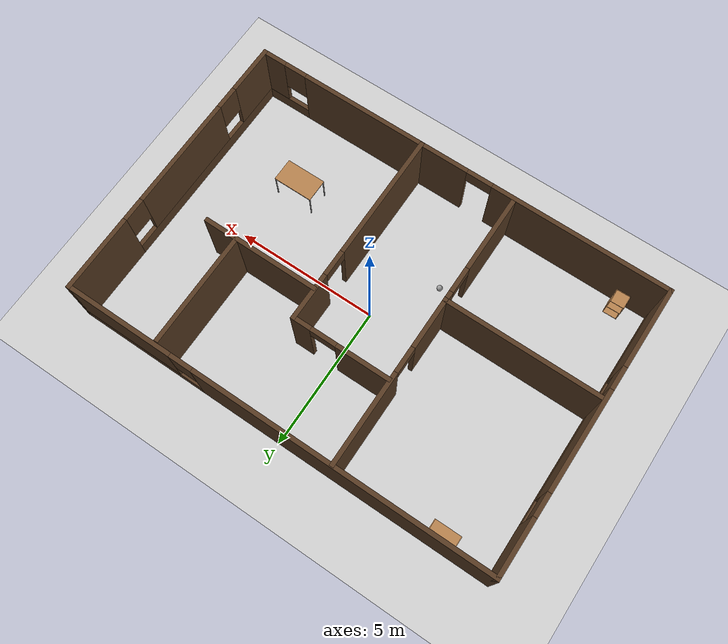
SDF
<sdf version="1.6">
 <world name="default">
  <plugin name="hello" filename="libhello.so"/>
  <light name="sun" type="directional">
   <pose>0 0 10 0 -0 0</pose>
   <diffuse>0.8 0.8 0.8 1</diffuse>
   <specular>0.1 0.1 0.1 1</specular>
   <attenuation>
    <range>1000</range>
    <constant>0.9</constant>
    <linear>0.01</linear>
    <quadratic>0.001</quadratic>
   </attenuation>
   <direction>-0.5 0.5 -1</direction>
  </light>
  <model name="ground_plane">
   <static>1</static>
   <link name="link">
    <collision name="collision">
     <geometry><plane><normal>0 0 1</normal><size>100 100</size></plane></geometry>
     <surface><friction><ode><mu>100</mu><mu2>50</mu2></ode></friction></surface>
    </collision>
    <visual name="visual">
     <cast_shadows>0</cast_shadows>
     <geometry><plane><normal>0 0 1</normal><size>100 100</size></plane></geometry>
     <material>
      <script><uri>file://media/materials/scripts/gazebo.material</uri><name>Gazebo/Grey</name></script>
     </material>
    </visual>
   </link>
  </model>
  <gravity>0 0 -9.8</gravity>
  <magnetic_field>6e-06 2.3e-05 -4.2e-05</magnetic_field>
  <atmosphere type="adiabatic"/>
  <physics name="default_physics" default="0" type="ode">
   <max_step_size>0.001</max_step_size>
   <real_time_factor>1</real_time_factor>
   <real_time_update_rate>1000</real_time_update_rate>
  </physics>
  <scene><ambient>0.4 0.4 0.4 1</ambient><background>0.7 0.7 0.7 1</background><shadows>1</shadows></scene>
  <spherical_coordinates>
   <surface_model>EARTH_WGS84</surface_model>
   <latitude_deg>0</latitude_deg>
   <longitude_deg>0</longitude_deg>
   <elevation>0</elevation>
   <heading_deg>0</heading_deg>
  </spherical_coordinates>
  <model name="Building">
   <link name="Wall_0">
    <pose>-0.015295 4.925 0 0 -0 0</pose>
    <visual name="Wall_0_Visual_0">
     <pose>-2.31291 0 1.25 0 -0 0</pose>
     <geometry><box><size>10.3742 0.15 2.5</size></box></geometry>
     <material>
      <script><uri>file://media/materials/scripts/gazebo.material</uri><name>Gazebo/Grey</name></script>
      <ambient>0.333333 0.223529 0.129412 1</ambient>
     </material>
    </visual>
    <collision name="Wall_0_Collision_0">
     <geometry><box><size>10.3742 0.15 2.5</size></box></geometry>
     <pose>-2.31291 0 1.25 0 -0 0</pose>
    </collision>
    <visual name="Wall_0_Visual_1">
     <pose>5.18709 0 0.25 0 -0 0</pose>
     <geometry><box><size>4.62583 0.15 0.5</size></box></geometry>
     <material>
      <script><uri>file://media/materials/scripts/gazebo.material</uri><name>Gazebo/Grey</name></script>
      <ambient>0.333333 0.223529 0.129412 1</ambient>
     </material>
    </visual>
    <collision name="Wall_0_Collision_1">
     <geometry><box><size>4.62583 0.15 0.5</size></box></geometry>
     <pose>5.18709 0 0.25 0 -0 0</pose>
    </collision>
    <visual name="Wall_0_Visual_2">
     <pose>5.58709 0 1.5 0 -0 0</pose>
     <geometry><box><size>3.82583 0.15 2</size></box></geometry>
     <material>
      <script><uri>file://media/materials/scripts/gazebo.material</uri><name>Gazebo/Grey</name></script>
      <ambient>0.333333 0.223529 0.129412 1</ambient>
     </material>
    </visual>
    <collision name="Wall_0_Collision_2">
     <geometry><box><size>3.82583 0.15 2</size></box></geometry>
     <pose>5.58709 0 1.5 0 -0 0</pose>
    </collision>
    <visual name="Wall_0_Visual_3">
     <pose>3.27417 0 1.9 0 -0 0</pose>
     <geometry><box><size>0.8 0.15 1.2</size></box></geometry>
     <material>
      <script><uri>file://media/materials/scripts/gazebo.material</uri><name>Gazebo/Grey</name></script>
      <ambient>0.333333 0.223529 0.129412 1</ambient>
     </material>
    </visual>
    <collision name="Wall_0_Collision_3">
     <geometry><box><size>0.8 0.15 1.2</size></box></geometry>
     <pose>3.27417 0 1.9 0 -0 0</pose>
    </collision>
   </link>
   <link name="Wall_1">
    <pose>7.44029 0 0 0 0 -1.5708</pose>
    <visual name="Wall_1_Visual_0">
     <pose>-3.6495 0 1.25 0 -0 0</pose>
     <geometry><box><size>2.701 0.15 2.5</size></box></geometry>
     <material>
      <script><uri>file://media/materials/scripts/gazebo.material</uri><name>Gazebo/Grey</name></script>
      <ambient>0.333333 0.223529 0.129412 1</ambient>
     </material>
    </visual>
    <collision name="Wall_1_Collision_0">
     <geometry><box><size>2.701 0.15 2.5</size></box></geometry>
     <pose>-3.6495 0 1.25 0 -0 0</pose>
    </collision>
    <visual name="Wall_1_Visual_1">
     <pose>1.3505 0 0.25 0 -0 0</pose>
     <geometry><box><size>7.299 0.15 0.5</size></box></geometry>
     <material>
      <script><uri>file://media/materials/scripts/gazebo.material</uri><name>Gazebo/Grey</name></script>
      <ambient>0.333333 0.223529 0.129412 1</ambient>
     </material>
    </visual>
    <collision name="Wall_1_Collision_1">
     <geometry><box><size>7.299 0.15 0.5</size></box></geometry>
     <pose>1.3505 0 0.25 0 -0 0</pose>
    </collision>
    <visual name="Wall_1_Visual_2">
     <pose>0.470903 0 1.5 0 -0 0</pose>
     <geometry><box><size>3.93981 0.15 2</size></box></geometry>
     <material>
      <script><uri>file://media/materials/scripts/gazebo.material</uri><name>Gazebo/Grey</name></script>
      <ambient>0.333333 0.223529 0.129412 1</ambient>
     </material>
    </visual>
    <collision name="Wall_1_Collision_2">
     <geometry><box><size>3.93981 0.15 2</size></box></geometry>
     <pose>0.470903 0 1.5 0 -0 0</pose>
    </collision>
    <visual name="Wall_1_Visual_3">
     <pose>4.1204 0 1.5 0 -0 0</pose>
     <geometry><box><size>1.75919 0.15 2</size></box></geometry>
     <material>
      <script><uri>file://media/materials/scripts/gazebo.material</uri><name>Gazebo/Grey</name></script>
      <ambient>0.333333 0.223529 0.129412 1</ambient>
     </material>
    </visual>
    <collision name="Wall_1_Collision_3">
     <geometry><box><size>1.75919 0.15 2</size></box></geometry>
     <pose>4.1204 0 1.5 0 -0 0</pose>
    </collision>
    <visual name="Wall_1_Visual_4">
     <pose>-1.899 0 1.9 0 -0 0</pose>
     <geometry><box><size>0.8 0.15 1.2</size></box></geometry>
     <material>
      <script><uri>file://media/materials/scripts/gazebo.material</uri><name>Gazebo/Grey</name></script>
      <ambient>0.333333 0.223529 0.129412 1</ambient>
     </material>
    </visual>
    <collision name="Wall_1_Collision_4">
     <geometry><box><size>0.8 0.15 1.2</size></box></geometry>
     <pose>-1.899 0 1.9 0 -0 0</pose>
    </collision>
    <visual name="Wall_1_Visual_5">
     <pose>2.84081 0 1.9 0 -0 0</pose>
     <geometry><box><size>0.8 0.15 1.2</size></box></geometry>
     <material>
      <script><uri>file://media/materials/scripts/gazebo.material</uri><name>Gazebo/Grey</name></script>
      <ambient>0.333333 0.223529 0.129412 1</ambient>
     </material>
    </visual>
    <collision name="Wall_1_Collision_5">
     <geometry><box><size>0.8 0.15 1.2</size></box></geometry>
     <pose>2.84081 0 1.9 0 -0 0</pose>
    </collision>
   </link>
   <link name="Wall_13">
    <pose>-2.05267 -2.87833 0 0 0 -1.5708</pose>
    <visual name="Wall_13_Visual_0">
     <pose>-1.80512 0 1.25 0 -0 0</pose>
     <geometry><box><size>0.389756 0.15 2.5</size></box></geometry>
     <material>
      <script><uri>file://media/materials/scripts/gazebo.material</uri><name>Gazebo/Grey</name></script>
      <ambient>0.333333 0.223529 0.129412 1</ambient>
     </material>
    </visual>
    <collision name="Wall_13_Collision_0">
     <geometry><box><size>0.389756 0.15 2.5</size></box></geometry>
     <pose>-1.80512 0 1.25 0 -0 0</pose>
    </collision>
    <visual name="Wall_13_Visual_1">
     <pose>0.644878 0 1.25 0 -0 0</pose>
     <geometry><box><size>2.71024 0.15 2.5</size></box></geometry>
     <material>
      <script><uri>file://media/materials/scripts/gazebo.material</uri><name>Gazebo/Grey</name></script>
      <ambient>0.333333 0.223529 0.129412 1</ambient>
     </material>
    </visual>
    <collision name="Wall_13_Collision_1">
     <geometry><box><size>2.71024 0.15 2.5</size></box></geometry>
     <pose>0.644878 0 1.25 0 -0 0</pose>
    </collision>
    <visual name="Wall_13_Visual_2">
     <pose>-1.16024 0 2.25 0 -0 0</pose>
     <geometry><box><size>0.9 0.15 0.5</size></box></geometry>
     <material>
      <script><uri>file://media/materials/scripts/gazebo.material</uri><name>Gazebo/Grey</name></script>
      <ambient>0.333333 0.223529 0.129412 1</ambient>
     </material>
    </visual>
    <collision name="Wall_13_Collision_2">
     <geometry><box><size>0.9 0.15 0.5</size></box></geometry>
     <pose>-1.16024 0 2.25 0 -0 0</pose>
    </collision>
   </link>
   <link name="Wall_18">
    <pose>1.35517 -1.45885 0 0 0 -1.5708</pose>
    <visual name="Wall_18_Visual_0">
     <pose>-2.68037 0 1.25 0 -0 0</pose>
     <geometry><box><size>1.69281 0.15 2.5</size></box></geometry>
     <material>
      <script><uri>file://media/materials/scripts/gazebo.material</uri><name>Gazebo/Grey</name></script>
      <ambient>0.333333 0.223529 0.129412 1</ambient>
     </material>
    </visual>
    <collision name="Wall_18_Collision_0">
     <geometry><box><size>1.69281 0.15 2.5</size></box></geometry>
     <pose>-2.68037 0 1.25 0 -0 0</pose>
    </collision>
    <visual name="Wall_18_Visual_1">
     <pose>1.29641 0 1.25 0 -0 0</pose>
     <geometry><box><size>4.46074 0.15 2.5</size></box></geometry>
     <material>
      <script><uri>file://media/materials/scripts/gazebo.material</uri><name>Gazebo/Grey</name></script>
      <ambient>0.333333 0.223529 0.129412 1</ambient>
     </material>
    </visual>
    <collision name="Wall_18_Collision_1">
     <geometry><box><size>4.46074 0.15 2.5</size></box></geometry>
     <pose>1.29641 0 1.25 0 -0 0</pose>
    </collision>
    <visual name="Wall_18_Visual_2">
     <pose>-1.38396 0 2.25 0 -0 0</pose>
     <geometry><box><size>0.9 0.15 0.5</size></box></geometry>
     <material>
      <script><uri>file://media/materials/scripts/gazebo.material</uri><name>Gazebo/Grey</name></script>
      <ambient>0.333333 0.223529 0.129412 1</ambient>
     </material>
    </visual>
    <collision name="Wall_18_Collision_2">
     <geometry><box><size>0.9 0.15 0.5</size></box></geometry>
     <pose>-1.38396 0 2.25 0 -0 0</pose>
    </collision>
   </link>
   <link name="Wall_20">
    <collision name="Wall_20_Collision">
     <geometry><box><size>3 0.15 2.5</size></box></geometry>
     <pose>0 0 1.25 0 -0 0</pose>
    </collision>
    <visual name="Wall_20_Visual">
     <pose>0 0 1.25 0 -0 0</pose>
     <geometry><box><size>3 0.15 2.5</size></box></geometry>
     <material>
      <script><uri>file://media/materials/scripts/gazebo.material</uri><name>Gazebo/Grey</name></script>
      <ambient>0.333333 0.223529 0.129412 1</ambient>
     </material>
    </visual>
    <pose>2.81648 0.912675 0 0 -0 0</pose>
   </link>
   <link name="Wall_21">
    <collision name="Wall_21_Collision">
     <geometry><box><size>4 0.15 2.5</size></box></geometry>
     <pose>0 0 1.25 0 -0 0</pose>
    </collision>
    <visual name="Wall_21_Visual">
     <pose>0 0 1.25 0 -0 0</pose>
     <geometry><box><size>4 0.15 2.5</size></box></geometry>
     <material>
      <script><uri>file://media/materials/scripts/gazebo.material</uri><name>Gazebo/Grey</name></script>
      <ambient>0.333333 0.223529 0.129412 1</ambient>
     </material>
    </visual>
    <pose>4.24148 2.83768 0 0 -0 1.5708</pose>
   </link>
   <link name="Wall_23">
    <collision name="Wall_23_Collision">
     <geometry><box><size>1.25 0.15 2.5</size></box></geometry>
     <pose>0 0 1.25 0 -0 0</pose>
    </collision>
    <visual name="Wall_23_Visual">
     <pose>0 0 1.25 0 -0 0</pose>
     <geometry><box><size>1.25 0.15 2.5</size></box></geometry>
     <material>
      <script><uri>file://media/materials/scripts/gazebo.material</uri><name>Gazebo/Grey</name></script>
      <ambient>0.333333 0.223529 0.129412 1</ambient>
     </material>
    </visual>
    <pose>4.79148 0.912675 0 0 -0 0</pose>
   </link>
   <link name="Wall_25">
    <pose>-0.319831 1.99293 0 0 -0 3.14159</pose>
    <visual name="Wall_25_Visual_0">
     <pose>-1.40083 0 1.25 0 -0 0</pose>
     <geometry><box><size>0.698335 0.15 2.5</size></box></geometry>
     <material>
      <script><uri>file://media/materials/scripts/gazebo.material</uri><name>Gazebo/Grey</name></script>
      <ambient>0.333333 0.223529 0.129412 1</ambient>
     </material>
    </visual>
    <collision name="Wall_25_Collision_0">
     <geometry><box><size>0.698335 0.15 2.5</size></box></geometry>
     <pose>-1.40083 0 1.25 0 -0 0</pose>
    </collision>
    <visual name="Wall_25_Visual_1">
     <pose>0.799167 0 1.25 0 -0 0</pose>
     <geometry><box><size>1.90166 0.15 2.5</size></box></geometry>
     <material>
      <script><uri>file://media/materials/scripts/gazebo.material</uri><name>Gazebo/Grey</name></script>
      <ambient>0.333333 0.223529 0.129412 1</ambient>
     </material>
    </visual>
    <collision name="Wall_25_Collision_1">
     <geometry><box><size>1.90166 0.15 2.5</size></box></geometry>
     <pose>0.799167 0 1.25 0 -0 0</pose>
    </collision>
    <visual name="Wall_25_Visual_2">
     <pose>-0.601665 0 2.25 0 -0 0</pose>
     <geometry><box><size>0.9 0.15 0.5</size></box></geometry>
     <material>
      <script><uri>file://media/materials/scripts/gazebo.material</uri><name>Gazebo/Grey</name></script>
      <ambient>0.333333 0.223529 0.129412 1</ambient>
     </material>
    </visual>
    <collision name="Wall_25_Collision_2">
     <geometry><box><size>0.9 0.15 0.5</size></box></geometry>
     <pose>-0.601665 0 2.25 0 -0 0</pose>
    </collision>
   </link>
   <link name="Wall_3">
    <pose>-7.44029 0 0 0 0 -1.5708</pose>
    <visual name="Wall_3_Visual_0">
     <pose>-3.99757 0 1.25 0 -0 0</pose>
     <geometry><box><size>2.00486 0.15 2.5</size></box></geometry>
     <material>
      <script><uri>file://media/materials/scripts/gazebo.material</uri><name>Gazebo/Grey</name></script>
      <ambient>0.333333 0.223529 0.129412 1</ambient>
     </material>
    </visual>
    <collision name="Wall_3_Collision_0">
     <geometry><box><size>2.00486 0.15 2.5</size></box></geometry>
     <pose>-3.99757 0 1.25 0 -0 0</pose>
    </collision>
    <visual name="Wall_3_Visual_1">
     <pose>1.00243 0 0.25 0 -0 0</pose>
     <geometry><box><size>7.99514 0.15 0.5</size></box></geometry>
     <material>
      <script><uri>file://media/materials/scripts/gazebo.material</uri><name>Gazebo/Grey</name></script>
      <ambient>0.333333 0.223529 0.129412 1</ambient>
     </material>
    </visual>
    <collision name="Wall_3_Collision_1">
     <geometry><box><size>7.99514 0.15 0.5</size></box></geometry>
     <pose>1.00243 0 0.25 0 -0 0</pose>
    </collision>
    <visual name="Wall_3_Visual_2">
     <pose>-0.438527 0 1.5 0 -0 0</pose>
     <geometry><box><size>3.51322 0.15 2</size></box></geometry>
     <material>
      <script><uri>file://media/materials/scripts/gazebo.material</uri><name>Gazebo/Grey</name></script>
      <ambient>0.333333 0.223529 0.129412 1</ambient>
     </material>
    </visual>
    <collision name="Wall_3_Collision_2">
     <geometry><box><size>3.51322 0.15 2</size></box></geometry>
     <pose>-0.438527 0 1.5 0 -0 0</pose>
    </collision>
    <visual name="Wall_3_Visual_3">
     <pose>3.55904 0 1.5 0 -0 0</pose>
     <geometry><box><size>2.88192 0.15 2</size></box></geometry>
     <material>
      <script><uri>file://media/materials/scripts/gazebo.material</uri><name>Gazebo/Grey</name></script>
      <ambient>0.333333 0.223529 0.129412 1</ambient>
     </material>
    </visual>
    <collision name="Wall_3_Collision_3">
     <geometry><box><size>2.88192 0.15 2</size></box></geometry>
     <pose>3.55904 0 1.5 0 -0 0</pose>
    </collision>
    <visual name="Wall_3_Visual_4">
     <pose>-2.59514 0 1.9 0 -0 0</pose>
     <geometry><box><size>0.8 0.15 1.2</size></box></geometry>
     <material>
      <script><uri>file://media/materials/scripts/gazebo.material</uri><name>Gazebo/Grey</name></script>
      <ambient>0.333333 0.223529 0.129412 1</ambient>
     </material>
    </visual>
    <collision name="Wall_3_Collision_4">
     <geometry><box><size>0.8 0.15 1.2</size></box></geometry>
     <pose>-2.59514 0 1.9 0 -0 0</pose>
    </collision>
    <visual name="Wall_3_Visual_5">
     <pose>1.71808 0 1.9 0 -0 0</pose>
     <geometry><box><size>0.8 0.15 1.2</size></box></geometry>
     <material>
      <script><uri>file://media/materials/scripts/gazebo.material</uri><name>Gazebo/Grey</name></script>
      <ambient>0.333333 0.223529 0.129412 1</ambient>
     </material>
    </visual>
    <collision name="Wall_3_Collision_5">
     <geometry><box><size>0.8 0.15 1.2</size></box></geometry>
     <pose>1.71808 0 1.9 0 -0 0</pose>
    </collision>
   </link>
   <link name="Wall_4">
    <pose>0 -4.925 0 0 -0 0</pose>
    <visual name="Wall_4_Visual_0">
     <pose>-4.38024 0 1.25 0 -0 0</pose>
     <geometry><box><size>6.27012 0.15 2.5</size></box></geometry>
     <material>
      <script><uri>file://media/materials/scripts/gazebo.material</uri><name>Gazebo/Grey</name></script>
      <ambient>0.333333 0.223529 0.129412 1</ambient>
     </material>
    </visual>
    <collision name="Wall_4_Collision_0">
     <geometry><box><size>6.27012 0.15 2.5</size></box></geometry>
     <pose>-4.38024 0 1.25 0 -0 0</pose>
    </collision>
    <visual name="Wall_4_Visual_1">
     <pose>2.72981 0 1.25 0 -0 0</pose>
     <geometry><box><size>6.14998 0.15 2.5</size></box></geometry>
     <material>
      <script><uri>file://media/materials/scripts/gazebo.material</uri><name>Gazebo/Grey</name></script>
      <ambient>0.333333 0.223529 0.129412 1</ambient>
     </material>
    </visual>
    <collision name="Wall_4_Collision_1">
     <geometry><box><size>6.14998 0.15 2.5</size></box></geometry>
     <pose>2.72981 0 1.25 0 -0 0</pose>
    </collision>
    <visual name="Wall_4_Visual_2">
     <pose>6.66005 0 0.25 0 -0 0</pose>
     <geometry><box><size>1.71049 0.15 0.5</size></box></geometry>
     <material>
      <script><uri>file://media/materials/scripts/gazebo.material</uri><name>Gazebo/Grey</name></script>
      <ambient>0.333333 0.223529 0.129412 1</ambient>
     </material>
    </visual>
    <collision name="Wall_4_Collision_2">
     <geometry><box><size>1.71049 0.15 0.5</size></box></geometry>
     <pose>6.66005 0 0.25 0 -0 0</pose>
    </collision>
    <visual name="Wall_4_Visual_3">
     <pose>7.06005 0 1.5 0 -0 0</pose>
     <geometry><box><size>0.910491 0.15 2</size></box></geometry>
     <material>
      <script><uri>file://media/materials/scripts/gazebo.material</uri><name>Gazebo/Grey</name></script>
      <ambient>0.333333 0.223529 0.129412 1</ambient>
     </material>
    </visual>
    <collision name="Wall_4_Collision_3">
     <geometry><box><size>0.910491 0.15 2</size></box></geometry>
     <pose>7.06005 0 1.5 0 -0 0</pose>
    </collision>
    <visual name="Wall_4_Visual_4">
     <pose>6.2048 0 1.9 0 -0 0</pose>
     <geometry><box><size>0.8 0.15 1.2</size></box></geometry>
     <material>
      <script><uri>file://media/materials/scripts/gazebo.material</uri><name>Gazebo/Grey</name></script>
      <ambient>0.333333 0.223529 0.129412 1</ambient>
     </material>
    </visual>
    <collision name="Wall_4_Collision_4">
     <geometry><box><size>0.8 0.15 1.2</size></box></geometry>
     <pose>6.2048 0 1.9 0 -0 0</pose>
    </collision>
    <visual name="Wall_4_Visual_5">
     <pose>-0.795178 0 2.25 0 -0 0</pose>
     <geometry><box><size>0.9 0.15 0.5</size></box></geometry>
     <material>
      <script><uri>file://media/materials/scripts/gazebo.material</uri><name>Gazebo/Grey</name></script>
      <ambient>0.333333 0.223529 0.129412 1</ambient>
     </material>
    </visual>
    <collision name="Wall_4_Collision_5">
     <geometry><box><size>0.9 0.15 0.5</size></box></geometry>
     <pose>-0.795178 0 2.25 0 -0 0</pose>
    </collision>
   </link>
   <link name="Wall_6">
    <collision name="Wall_6_Collision">
     <geometry><box><size>5.5 0.15 2.5</size></box></geometry>
     <pose>0 0 1.25 0 -0 0</pose>
    </collision>
    <visual name="Wall_6_Visual">
     <pose>0 0 1.25 0 -0 0</pose>
     <geometry><box><size>5.5 0.15 2.5</size></box></geometry>
     <material>
      <script><uri>file://media/materials/scripts/gazebo.material</uri><name>Gazebo/Grey</name></script>
      <ambient>0.333333 0.223529 0.129412 1</ambient>
     </material>
    </visual>
    <pose>-4.72767 -0.953328 0 0 -0 0</pose>
   </link>
   <link name="Wall_7">
    <pose>-2.05267 1.97167 0 0 -0 1.5708</pose>
    <visual name="Wall_7_Visual_0">
     <pose>-2.0849 0 1.25 0 -0 0</pose>
     <geometry><box><size>1.8302 0.15 2.5</size></box></geometry>
     <material>
      <script><uri>file://media/materials/scripts/gazebo.material</uri><name>Gazebo/Grey</name></script>
      <ambient>0.333333 0.223529 0.129412 1</ambient>
     </material>
    </visual>
    <collision name="Wall_7_Collision_0">
     <geometry><box><size>1.8302 0.15 2.5</size></box></geometry>
     <pose>-2.0849 0 1.25 0 -0 0</pose>
    </collision>
    <visual name="Wall_7_Visual_1">
     <pose>1.3651 0 1.25 0 -0 0</pose>
     <geometry><box><size>3.2698 0.15 2.5</size></box></geometry>
     <material>
      <script><uri>file://media/materials/scripts/gazebo.material</uri><name>Gazebo/Grey</name></script>
      <ambient>0.333333 0.223529 0.129412 1</ambient>
     </material>
    </visual>
    <collision name="Wall_7_Collision_1">
     <geometry><box><size>3.2698 0.15 2.5</size></box></geometry>
     <pose>1.3651 0 1.25 0 -0 0</pose>
    </collision>
    <visual name="Wall_7_Visual_2">
     <pose>-0.719803 0 2.25 0 -0 0</pose>
     <geometry><box><size>0.9 0.15 0.5</size></box></geometry>
     <material>
      <script><uri>file://media/materials/scripts/gazebo.material</uri><name>Gazebo/Grey</name></script>
      <ambient>0.333333 0.223529 0.129412 1</ambient>
     </material>
    </visual>
    <collision name="Wall_7_Collision_2">
     <geometry><box><size>0.9 0.15 0.5</size></box></geometry>
     <pose>-0.719803 0 2.25 0 -0 0</pose>
    </collision>
   </link>
   <static>1</static>
  </model>
  <model name="bookshelf">
   <static>1</static>
   <link name="link">
    <inertial><mass>1</mass></inertial>
    <collision name="back">
     <pose>0 0.005 0.6 0 -0 0</pose>
     <geometry><box><size>0.9 0.01 1.2</size></box></geometry>
    </collision>
    <visual name="visual1">
     <pose>0 0.005 0.6 0 -0 0</pose>
     <geometry><box><size>0.9 0.01 1.2</size></box></geometry>
     <material>
      <script><uri>file://media/materials/scripts/gazebo.material</uri><name>Gazebo/Wood</name></script>
     </material>
    </visual>
    <collision name="left_side">
     <pose>0.45 -0.195 0.6 0 -0 0</pose>
     <geometry><box><size>0.02 0.4 1.2</size></box></geometry>
    </collision>
    <visual name="visual2">
     <pose>0.45 -0.195 0.6 0 -0 0</pose>
     <geometry><box><size>0.02 0.4 1.2</size></box></geometry>
     <material>
      <script><uri>file://media/materials/scripts/gazebo.material</uri><name>Gazebo/Wood</name></script>
     </material>
    </visual>
    <collision name="right_side">
     <pose>-0.45 -0.195 0.6 0 -0 0</pose>
     <geometry><box><size>0.02 0.4 1.2</size></box></geometry>
    </collision>
    <visual name="visual3">
     <pose>-0.45 -0.195 0.6 0 -0 0</pose>
     <geometry><box><size>0.02 0.4 1.2</size></box></geometry>
     <material>
      <script><uri>file://media/materials/scripts/gazebo.material</uri><name>Gazebo/Wood</name></script>
     </material>
    </visual>
    <collision name="bottom">
     <pose>0 -0.195 0.03 0 -0 0</pose>
     <geometry><box><size>0.88 0.4 0.06</size></box></geometry>
    </collision>
    <visual name="visual4">
     <pose>0 -0.195 0.03 0 -0 0</pose>
     <geometry><box><size>0.88 0.4 0.06</size></box></geometry>
     <material>
      <script><uri>file://media/materials/scripts/gazebo.material</uri><name>Gazebo/Wood</name></script>
     </material>
    </visual>
    <collision name="top">
     <pose>0 -0.195 1.19 0 -0 0</pose>
     <geometry><box><size>0.88 0.4 0.02</size></box></geometry>
    </collision>
    <visual name="visual5">
     <pose>0 -0.195 1.19 0 -0 0</pose>
     <geometry><box><size>0.88 0.4 0.02</size></box></geometry>
     <material>
      <script><uri>file://media/materials/scripts/gazebo.material</uri><name>Gazebo/Wood</name></script>
     </material>
    </visual>
    <collision name="low_shelf">
     <pose>0 -0.195 0.43 0 -0 0</pose>
     <geometry><box><size>0.88 0.4 0.02</size></box></geometry>
    </collision>
    <visual name="visual6">
     <pose>0 -0.195 0.43 0 -0 0</pose>
     <geometry><box><size>0.88 0.4 0.02</size></box></geometry>
     <material>
      <script><uri>file://media/materials/scripts/gazebo.material</uri><name>Gazebo/Wood</name></script>
     </material>
    </visual>
    <collision name="high_shelf">
     <pose>0 -0.195 0.8 0 -0 0</pose>
     <geometry><box><size>0.88 0.4 0.02</size></box></geometry>
    </collision>
    <visual name="visual7">
     <pose>0 -0.195 0.8 0 -0 0</pose>
     <geometry><box><size>0.88 0.4 0.02</size></box></geometry>
     <material>
      <script><uri>file://media/materials/scripts/gazebo.material</uri><name>Gazebo/Wood</name></script>
     </material>
    </visual>
   </link>
   <pose>-5.65412 4.76867 0 0 -0 0</pose>
  </model>
  <model name="table">
   <static>0</static>
   <link name="link">
    <collision name="surface">
     <pose>0 0 1 0 -0 0</pose>
     <geometry><box><size>1.5 0.8 0.03</size></box></geometry>
     <surface><friction><ode><mu>0.6</mu><mu2>0.6</mu2></ode></friction></surface>
    </collision>
    <visual name="visual1">
     <pose>0 0 1 0 -0 0</pose>
     <geometry><box><size>1.4 0.8 0.04</size></box></geometry>
     <material>
      <script><uri>file://media/materials/scripts/gazebo.material</uri><name>Gazebo/Wood</name></script>
     </material>
    </visual>
    <collision name="front_left_leg">
     <pose>0.68 0.38 0.5 0 -0 0</pose>
     <geometry><cylinder><radius>0.02</radius><length>1</length></cylinder></geometry>
    </collision>
    <visual name="front_left_leg">
     <pose>0.68 0.38 0.5 0 -0 0</pose>
     <geometry><cylinder><radius>0.02</radius><length>1</length></cylinder></geometry>
     <material>
      <script><uri>file://media/materials/scripts/gazebo.material</uri><name>Gazebo/Grey</name></script>
     </material>
    </visual>
    <collision name="front_right_leg">
     <pose>0.68 -0.38 0.5 0 -0 0</pose>
     <geometry><cylinder><radius>0.02</radius><length>1</length></cylinder></geometry>
    </collision>
    <visual name="front_right_leg">
     <pose>0.68 -0.38 0.5 0 -0 0</pose>
     <geometry><cylinder><radius>0.02</radius><length>1</length></cylinder></geometry>
     <material>
      <script><uri>file://media/materials/scripts/gazebo.material</uri><name>Gazebo/Grey</name></script>
     </material>
    </visual>
    <collision name="back_right_leg">
     <pose>-0.68 -0.38 0.5 0 -0 0</pose>
     <geometry><cylinder><radius>0.02</radius><length>1</length></cylinder></geometry>
    </collision>
    <visual name="back_right_leg">
     <pose>-0.68 -0.38 0.5 0 -0 0</pose>
     <geometry><cylinder><radius>0.02</radius><length>1</length></cylinder></geometry>
     <material>
      <script><uri>file://media/materials/scripts/gazebo.material</uri><name>Gazebo/Grey</name></script>
     </material>
    </visual>
    <collision name="back_left_leg">
     <pose>-0.68 0.38 0.5 0 -0 0</pose>
     <geometry><cylinder><radius>0.02</radius><length>1</length></cylinder></geometry>
    </collision>
    <visual name="back_left_leg">
     <pose>-0.68 0.38 0.5 0 -0 0</pose>
     <geometry><cylinder><radius>0.02</radius><length>1</length></cylinder></geometry>
     <material>
      <script><uri>file://media/materials/scripts/gazebo.material</uri><name>Gazebo/Grey</name></script>
     </material>
    </visual>
    <inertial>
     <inertia><ixx>1</ixx><ixy>0</ixy><ixz>0</ixz><iyy>1</iyy><iyz>0</iyz><izz>1</izz></inertia>
     <mass>1</mass>
    </inertial>
   </link>
   <pose>4.33312 -2.30894 -1e-06 0 1e-06 0</pose>
  </model>
  <model name="cabinet">
   <static>1</static>
   <link name="cabinet_bottom_plate">
    <inertial>
     <pose>0 0 -1 0 -0 0</pose>
     <inertia><ixx>2.05</ixx><ixy>0</ixy><ixz>0</ixz><iyy>2.05</iyy><iyz>0</iyz><izz>2.05</izz></inertia>
     <mass>25</mass>
    </inertial>
    <collision name="cabinet_bottom_plate_geom">
     <pose>0 0 0.01 0 -0 0</pose>
     <geometry><box><size>0.45 0.45 0.02</size></box></geometry>
    </collision>
    <visual name="cabinet_bottom_plate_geom_visual">
     <pose>0 0 0.01 0 -0 0</pose>
     <geometry><box><size>0.45 0.45 0.02</size></box></geometry>
     <material>
      <script><uri>file://media/materials/scripts/gazebo.material</uri><name>Gazebo/Wood</name></script>
     </material>
    </visual>
    <collision name="cabinet_bottom_plate_geom_cabinet_back_plate">
     <pose>0.235 0 0.51 0 -0 0</pose>
     <geometry><box><size>0.02 0.45 1.02</size></box></geometry>
    </collision>
    <visual name="cabinet_bottom_plate_geom_cabinet_back_plate_visual">
     <pose>0.235 0 0.51 0 -0 0</pose>
     <geometry><box><size>0.02 0.45 1.02</size></box></geometry>
     <material>
      <script><uri>file://media/materials/scripts/gazebo.material</uri><name>Gazebo/Wood</name></script>
     </material>
    </visual>
    <collision name="cabinet_bottom_plate_geom_cabinet_left_plate">
     <pose>0 0.235 0.51 0 -0 0</pose>
     <geometry><box><size>0.45 0.02 1.02</size></box></geometry>
    </collision>
    <visual name="cabinet_bottom_plate_geom_cabinet_left_plate_visual">
     <pose>0 0.235 0.51 0 -0 0</pose>
     <geometry><box><size>0.45 0.02 1.02</size></box></geometry>
     <material>
      <script><uri>file://media/materials/scripts/gazebo.material</uri><name>Gazebo/Wood</name></script>
     </material>
    </visual>
    <collision name="cabinet_bottom_plate_geom_cabinet_middle_plate">
     <pose>0 0 0.51 0 -0 0</pose>
     <geometry><box><size>0.45 0.45 0.02</size></box></geometry>
    </collision>
    <visual name="cabinet_bottom_plate_geom_cabinet_middle_plate_visual">
     <pose>0 0 0.51 0 -0 0</pose>
     <geometry><box><size>0.45 0.45 0.02</size></box></geometry>
     <material>
      <script><uri>file://media/materials/scripts/gazebo.material</uri><name>Gazebo/Wood</name></script>
     </material>
    </visual>
    <collision name="cabinet_bottom_plate_geom_cabinet_right_plate">
     <pose>0 -0.235 0.51 0 -0 0</pose>
     <geometry><box><size>0.45 0.02 1.02</size></box></geometry>
    </collision>
    <visual name="cabinet_bottom_plate_geom_cabinet_right_plate_visual">
     <pose>0 -0.235 0.51 0 -0 0</pose>
     <geometry><box><size>0.45 0.02 1.02</size></box></geometry>
     <material>
      <script><uri>file://media/materials/scripts/gazebo.material</uri><name>Gazebo/Wood</name></script>
     </material>
    </visual>
    <collision name="cabinet_bottom_plate_geom_cabinet_top_plate">
     <pose>0 0 1.01 0 -0 0</pose>
     <geometry><box><size>0.45 0.45 0.02</size></box></geometry>
    </collision>
    <visual name="cabinet_bottom_plate_geom_cabinet_top_plate_visual">
     <pose>0 0 1.01 0 -0 0</pose>
     <geometry><box><size>0.45 0.45 0.02</size></box></geometry>
     <material>
      <script><uri>file://media/materials/scripts/gazebo.material</uri><name>Gazebo/Wood</name></script>
     </material>
    </visual>
   </link>
   <pose>-6.37323 -4.52966 0.005726 0 0 -1.55027</pose>
  </model>
  <model name="my_ball_1">
   <link name="link_0">
    <inertial>
     <mass>1</mass>
     <inertia><ixx>0.1</ixx><ixy>0</ixy><ixz>0</ixz><iyy>0.1</iyy><iyz>0</iyz><izz>0.1</izz></inertia>
    </inertial>
    <visual name="visual">
     <geometry><sphere><radius>0.1</radius></sphere></geometry>
     <material>
      <lighting>1</lighting>
      <script><uri>file://media/materials/scripts/gazebo.material</uri><name>Gazebo/Grey</name></script>
      <ambient>1 1 1 1</ambient>
      <diffuse>1 1 1 1</diffuse>
      <specular>1 1 1 1</specular>
      <emissive>1 1 1 1</emissive>
      <shader type="vertex"><normal_map>__default__</normal_map></shader>
     </material>
    </visual>
    <collision name="collision">
     <geometry><sphere><radius>0.1</radius></sphere></geometry>
     <surface>
      <friction>
       <ode><mu>1</mu><mu2>1</mu2><fdir1>0 0 0</fdir1><slip1>0</slip1><slip2>0</slip2></ode>
       <torsional>
        <coefficient>1</coefficient>
        <patch_radius>0</patch_radius>
        <surface_radius>0</surface_radius>
        <use_patch_radius>1</use_patch_radius>
        <ode><slip>0</slip></ode>
       </torsional>
      </friction>
      <bounce><restitution_coefficient>0</restitution_coefficient><threshold>1e+06</threshold></bounce>
      <contact>
       <collide_without_contact>0</collide_without_contact>
       <collide_without_contact_bitmask>1</collide_without_contact_bitmask>
       <collide_bitmask>1</collide_bitmask>
       <ode>
        <soft_cfm>0</soft_cfm>
        <soft_erp>0.2</soft_erp>
        <kp>1e+13</kp>
        <kd>1</kd>
        <max_vel>0.01</max_vel>
        <min_depth>0</min_depth>
       </ode>
       <bullet>
        <split_impulse>1</split_impulse>
        <split_impulse_penetration_threshold>-0.01</split_impulse_penetration_threshold>
        <soft_cfm>0</soft_cfm>
        <soft_erp>0.2</soft_erp>
        <kp>1e+13</kp>
        <kd>1</kd>
       </bullet>
      </contact>
     </surface>
    </collision>
   </link>
   <static>0</static>
   <pose>-1.36739 -2.0286 0.059712 0 -0 0</pose>
  </model>
 </world>
</sdf>
